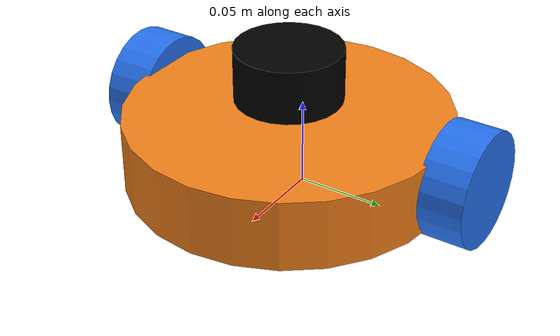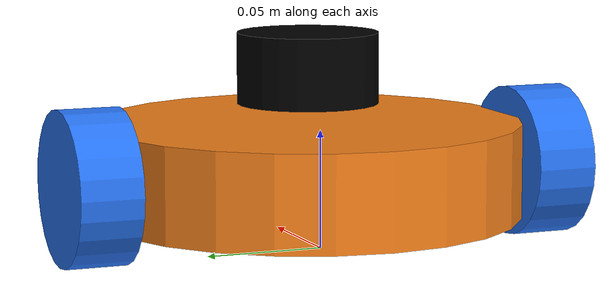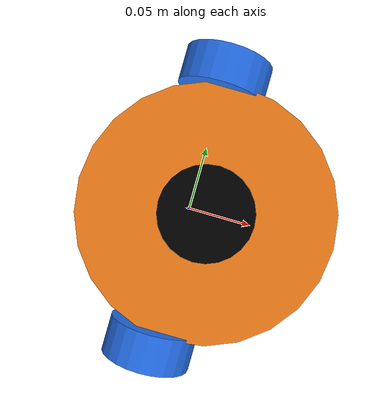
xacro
<?xml version="1.0"?>
<robot xmlns:xacro="http://www.ros.org/wiki/xacro" name="my_bot">

    <xacro:arg name="sim" default="true" />
    <!-- Fleet real: AGV1 blue, AGV2 orange. Defaults retain the simulation look. -->
    <xacro:arg name="body_color" default="orange" />
    <xacro:arg name="wheel_color" default="blue" />

    <xacro:property name="wheel_separation" value="0.200"/>  <!-- tam - tam hai banh sau -->
    <xacro:property name="wheel_radius"     value="0.03225"/><!-- duong kinh 64.5 mm -->
    <xacro:property name="wheel_x"          value="-0.014"/> <!-- truc banh sau lui 14 mm sau tam -->
    <xacro:property name="caster_x"         value="0.035"/>  <!-- banh da huong tien 35 mm truoc tam -->
    <xacro:property name="body_radius"      value="0.0907"/> <!-- duong kinh than 181.40 mm -->
    <xacro:property name="wheel_width"      value="0.026"/>  <!-- be rong lop 26 mm -->

    <xacro:property name="body_height"      value="0.040"/>  <!-- be day than xe -->
    <xacro:property name="caster_radius"    value="0.015"/>  <!-- ban kinh bi da huong -->
    <xacro:property name="lidar_z"          value="0.075"/>  <!-- tam LiDAR cao hon mat san -->
    <xacro:property name="imu_z"            value="0.055"/>  <!-- tam BNO055 cao hon mat san -->
    <xacro:property name="body_mass"        value="1.2"/>
    <xacro:property name="wheel_mass"       value="0.05"/>
    <xacro:property name="caster_mass"      value="0.02"/>

    <material name="white"><color rgba="1 1 1 1" /></material>
    <material name="blue"><color rgba="0.15 0.45 0.95 1"/></material>
    <material name="black"><color rgba="0 0 0 1"/></material>
    <material name="orange"><color rgba="0.95 0.5 0.1 1"/></material>
    <material name="red"><color rgba="1 0 0 1"/></material>

    <link name="base_footprint"/>
    <joint name="base_footprint_joint" type="fixed">
        <parent link="base_footprint"/>
        <child link="base_link"/>
        <origin xyz="${-wheel_x} 0 0" rpy="0 0 0"/>
    </joint>

    <link name="base_link"></link>

    <joint name="chassis_joint" type="fixed">
        <parent link="base_link"/>
        <child link="chassis"/>
        <origin xyz="0 0 0"/>
    </joint>
    <link name="chassis">
        <!-- Than dat o ngang tam truc banh -> gam cao 12 mm -->
        <visual>
            <origin xyz="0 0 ${wheel_radius}"/>
            <geometry><cylinder radius="${body_radius}" length="${body_height}"/></geometry>
            <material name="$(arg body_color)"/>
        </visual>
        <collision>
            <origin xyz="0 0 ${wheel_radius}"/>
            <geometry><cylinder radius="${body_radius}" length="${body_height}"/></geometry>
        </collision>
        <inertial>
            <origin xyz="0 0 ${wheel_radius}" rpy="0 0 0"/>
            <mass value="${body_mass}"/>
            <inertia
                ixx="${body_mass*(3*body_radius*body_radius + body_height*body_height)/12}"
                ixy="0.0" ixz="0.0"
                iyy="${body_mass*(3*body_radius*body_radius + body_height*body_height)/12}"
                iyz="0.0"
                izz="${body_mass*body_radius*body_radius/2}"/>
        </inertial>
    </link>

    <!-- Hai banh sau. Truc nam o z = wheel_radius thi lop vua cham san. -->
    <joint name="left_wheel_joint" type="continuous">
        <parent link="base_link"/>
        <child link="left_wheel"/>
        <origin xyz="${wheel_x} ${wheel_separation/2} ${wheel_radius}" rpy="-1.5707 0 0"/>
        <axis xyz="0 0 1"/>
    </joint>
    <link name="left_wheel">
        <visual>
            <geometry><cylinder radius="${wheel_radius}" length="${wheel_width}"/></geometry>
            <material name="$(arg wheel_color)"/>
        </visual>
        <collision>
            <geometry><cylinder radius="${wheel_radius}" length="${wheel_width}"/></geometry>
        </collision>
        <inertial>
            <origin xyz="0 0 0" rpy="0 0 0"/>
            <mass value="${wheel_mass}"/>
            <inertia
                ixx="${wheel_mass*(3*wheel_radius*wheel_radius + wheel_width*wheel_width)/12}"
                ixy="0.0" ixz="0.0"
                iyy="${wheel_mass*(3*wheel_radius*wheel_radius + wheel_width*wheel_width)/12}"
                iyz="0.0"
                izz="${wheel_mass*wheel_radius*wheel_radius/2}"/>
        </inertial>
    </link>

    <joint name="right_wheel_joint" type="continuous">
        <parent link="base_link"/>
        <child link="right_wheel"/>
        <origin xyz="${wheel_x} ${-wheel_separation/2} ${wheel_radius}" rpy="1.5707 0 0"/>
        <axis xyz="0 0 -1"/>
    </joint>
    <link name="right_wheel">
        <visual>
            <geometry><cylinder radius="${wheel_radius}" length="${wheel_width}"/></geometry>
            <material name="$(arg wheel_color)"/>
        </visual>
        <collision>
            <geometry><cylinder radius="${wheel_radius}" length="${wheel_width}"/></geometry>
        </collision>
        <inertial>
            <origin xyz="0 0 0" rpy="0 0 0"/>
            <mass value="${wheel_mass}"/>
            <inertia
                ixx="${wheel_mass*(3*wheel_radius*wheel_radius + wheel_width*wheel_width)/12}"
                ixy="0.0" ixz="0.0"
                iyy="${wheel_mass*(3*wheel_radius*wheel_radius + wheel_width*wheel_width)/12}"
                iyz="0.0"
                izz="${wheel_mass*wheel_radius*wheel_radius/2}"/>
        </inertial>
    </link>

    <!-- Banh da huong phia truoc. Tam o z = caster_radius thi bi vua cham san. -->
    <joint name="front_caster_joint" type="fixed">
        <parent link="chassis"/>
        <child link="front_caster"/>
        <origin xyz="${caster_x} 0 ${caster_radius}"/>
    </joint>
    <link name="front_caster">
        <visual>
            <geometry><sphere radius="${caster_radius}"/></geometry>
            <material name="black"/>
        </visual>
        <collision>
            <geometry><sphere radius="${caster_radius}"/></geometry>
        </collision>
        <inertial>
            <origin xyz="0 0 0" rpy="0 0 0"/>
            <mass value="${caster_mass}"/>
            <inertia
                ixx="${2*caster_mass*caster_radius*caster_radius/5}" ixy="0.0" ixz="0.0"
                iyy="${2*caster_mass*caster_radius*caster_radius/5}" iyz="0.0"
                izz="${2*caster_mass*caster_radius*caster_radius/5}"/>
        </inertial>
    </link>

    <!-- Bi da huong khong duoc co ma sat, neu khong xe se khong quay not -->
    <gazebo reference="front_caster">
        <mu1>0.0</mu1>
        <mu2>0.0</mu2>
        <material>Gazebo/Black</material>
    </gazebo>

    <joint name="lidar_joint" type="fixed">
        <parent link="chassis"/>
        <child link="lidar_link"/>
        <origin xyz="0 0 ${lidar_z}" rpy="0 0 0"/>
    </joint>
    <link name="lidar_link">
        <visual>
            <geometry><cylinder radius="0.030" length="0.030"/></geometry>
            <material name="black"/>
        </visual>
    </link>
    <xacro:if value="$(arg sim)">
    <gazebo reference="lidar_link">
        <sensor name="lidar" type="gpu_lidar">
            <pose>0 0 0 0 0 0</pose>
            <visualize>true</visualize>
            <update_rate>10</update_rate>
            <ray>
                <scan>
                    <horizontal>
                        <samples>360</samples>
                        <resolution>1</resolution>
                        <min_angle>-3.14159</min_angle>
                        <max_angle>3.14159</max_angle>
                    </horizontal>
                </scan>
                <range>
                    <min>0.15</min>
                    <max>8.0</max>
                    <resolution>0.01</resolution>
                </range>
            </ray>
            <topic>scan</topic>
            <gz_frame_id>lidar_link</gz_frame_id>
        </sensor>
    </gazebo>
    </xacro:if>

    <!-- IMU BNO055. Firmware phat /imu/data voi frame_id = imu_link,
         neu thieu link nay TF se bao loi "frame does not exist". -->
    <joint name="imu_joint" type="fixed">
        <parent link="chassis"/>
        <child link="imu_link"/>
        <origin xyz="0 0 ${imu_z}" rpy="0 0 0"/>
    </joint>
    <link name="imu_link"/>

</robot>
